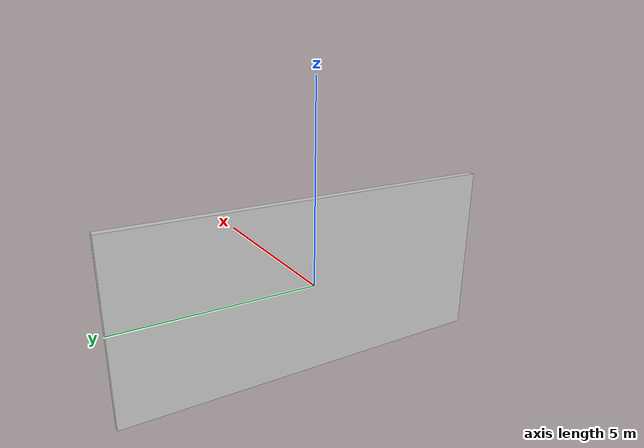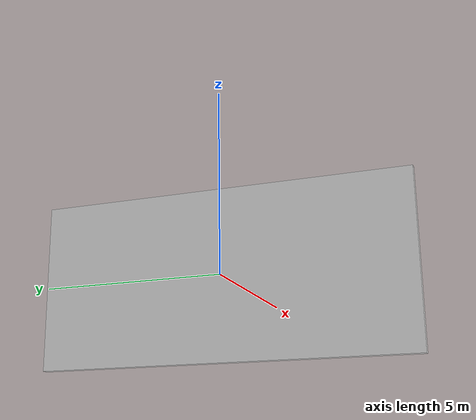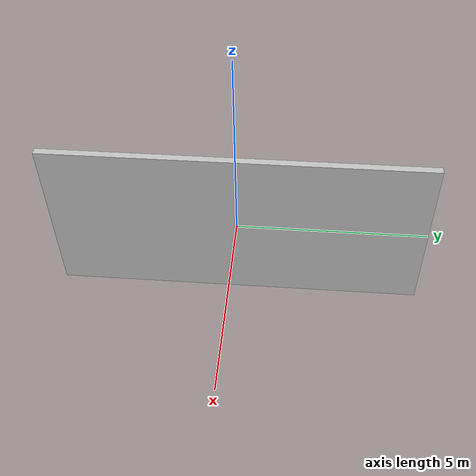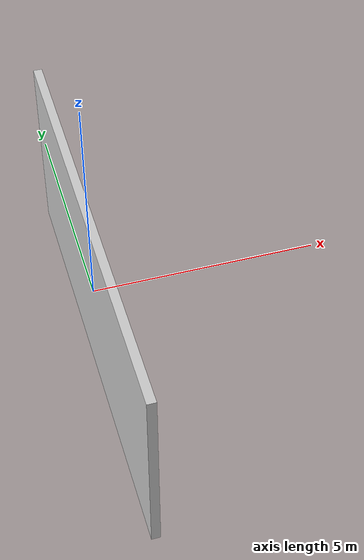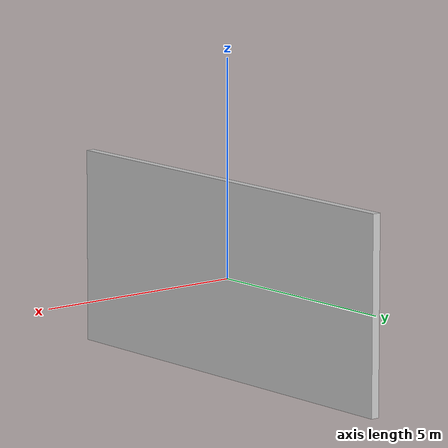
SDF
<?xml version="1.0" encoding="UTF-8"?>
<sdf version='1.9'>
  <model name="my_wall">
    <pose>0 0 0 0 0 0</pose>
    <static>true</static>
    <link name="link1">
    <collision name="collision">
      <geometry>
        <box>
          <size>0.2 10 4.5</size>
        </box>
      </geometry>
    </collision>
    <visual name="visual">
      <geometry>
        <box>
          <size>0.2 10 4.5</size>
        </box>
      </geometry>
      <material>
        <ambient>0.3 0.3 0.3 1</ambient>
        <diffuse>0.8 0.8 0.8 1</diffuse>
        <specular>1 1 1 1</specular>
      </material>
    </visual>
    </link>
  </model>
</sdf>
